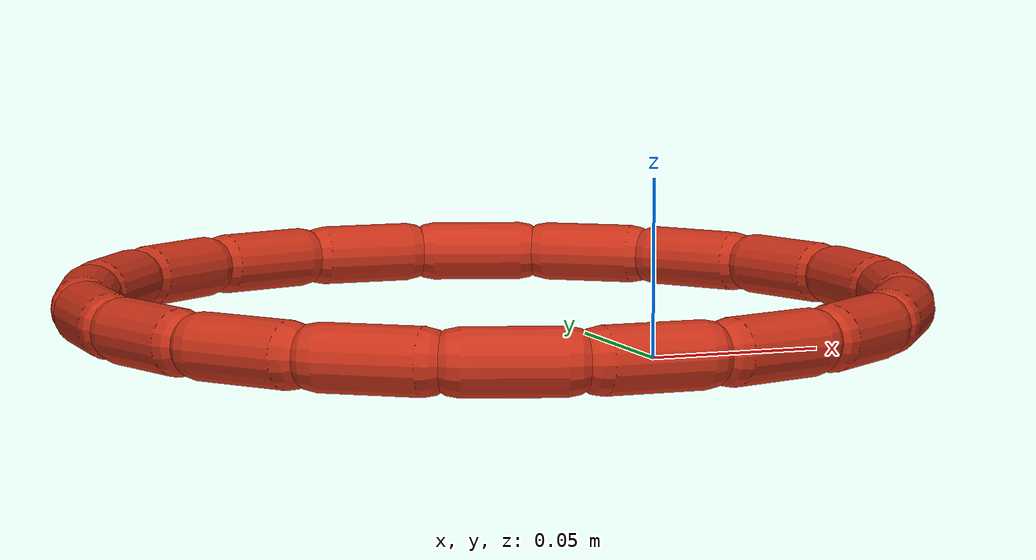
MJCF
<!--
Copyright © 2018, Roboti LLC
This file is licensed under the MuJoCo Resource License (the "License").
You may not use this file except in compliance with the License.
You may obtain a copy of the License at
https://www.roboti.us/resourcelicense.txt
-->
<mujoco model="Rope">

    <compiler angle="radian" />
    <option jacobian="dense" />
    <size njmax="300" nconmax="100" nstack="50000" />

    <worldbody>
        <body name="B0" pos="0 0 0">
            <inertial pos="0 0 0" quat="0.707107 0 0.707107 0" mass="0.0125664" diaginertia="1.98968e-06 1.98968e-06 6.28319e-07" />
            <joint type="free" />
            <geom name="G0" size="0.01 0.015" quat="0.707107 0 0.707107 0" type="capsule" rgba="0.8 0.2 0.1 1" />
            <body name="B1" pos="0.0390211 0.00618034 0" quat="0.987688 0 0 0.156434">
                <inertial pos="0 0 0" quat="0.707107 0 0.707107 0" mass="0.0125664" diaginertia="1.98968e-06 1.98968e-06 6.28319e-07" />
                <joint name="J0_1" pos="-0.02 0 0" axis="0 1 0"   damping="0.005" stiffness="0.001" />
                <joint name="J1_1" pos="-0.02 0 0" axis="0 0 1"   damping="0.005" stiffness="0.001" />
                <geom name="G1" size="0.01 0.015" quat="0.707107 0 0.707107 0" type="capsule" rgba="0.8 0.2 0.1 1" />
                <body name="B2" pos="0.0390211 0.00618034 0" quat="0.987688 0 0 0.156434">
                    <inertial pos="0 0 0" quat="0.707107 0 0.707107 0" mass="0.0125664" diaginertia="1.98968e-06 1.98968e-06 6.28319e-07" />
                    <joint name="J0_2" pos="-0.02 0 0" axis="0 1 0"   damping="0.005" stiffness="0.001" />
                    <joint name="J1_2" pos="-0.02 0 0" axis="0 0 1"   damping="0.005" stiffness="0.001" />
                    <geom name="G2" size="0.01 0.015" quat="0.707107 0 0.707107 0" type="capsule" rgba="0.8 0.2 0.1 1" />
                    <body name="B3" pos="0.0390211 0.00618034 0" quat="0.987688 0 0 0.156434">
                        <inertial pos="0 0 0" quat="0.707107 0 0.707107 0" mass="0.0125664" diaginertia="1.98968e-06 1.98968e-06 6.28319e-07" />
                        <joint name="J0_3" pos="-0.02 0 0" axis="0 1 0"   damping="0.005" stiffness="0.001" />
                        <joint name="J1_3" pos="-0.02 0 0" axis="0 0 1"   damping="0.005" stiffness="0.001" />
                        <geom name="G3" size="0.01 0.015" quat="0.707107 0 0.707107 0" type="capsule" rgba="0.8 0.2 0.1 1" />
                        <body name="B4" pos="0.0390211 0.00618034 0" quat="0.987688 0 0 0.156434">
                            <inertial pos="0 0 0" quat="0.707107 0 0.707107 0" mass="0.0125664" diaginertia="1.98968e-06 1.98968e-06 6.28319e-07" />
                            <joint name="J0_4" pos="-0.02 0 0" axis="0 1 0"   damping="0.005" stiffness="0.001" />
                            <joint name="J1_4" pos="-0.02 0 0" axis="0 0 1"   damping="0.005" stiffness="0.001" />
                            <geom name="G4" size="0.01 0.015" quat="0.707107 0 0.707107 0" type="capsule" rgba="0.8 0.2 0.1 1" />
                            <body name="B5" pos="0.0390211 0.00618034 0" quat="0.987688 0 0 0.156434">
                                <inertial pos="0 0 0" quat="0.707107 0 0.707107 0" mass="0.0125664" diaginertia="1.98968e-06 1.98968e-06 6.28319e-07" />
                                <joint name="J0_5" pos="-0.02 0 0" axis="0 1 0"   damping="0.005" stiffness="0.001" />
                                <joint name="J1_5" pos="-0.02 0 0" axis="0 0 1"   damping="0.005" stiffness="0.001" />
                                <geom name="G5" size="0.01 0.015" quat="0.707107 0 0.707107 0" type="capsule" rgba="0.8 0.2 0.1 1" />
                                <body name="B6" pos="0.0390211 0.00618034 0" quat="0.987688 0 0 0.156434">
                                    <inertial pos="0 0 0" quat="0.707107 0 0.707107 0" mass="0.0125664" diaginertia="1.98968e-06 1.98968e-06 6.28319e-07" />
                                    <joint name="J0_6" pos="-0.02 0 0" axis="0 1 0"   damping="0.005" stiffness="0.001" />
                                    <joint name="J1_6" pos="-0.02 0 0" axis="0 0 1"   damping="0.005" stiffness="0.001" />
                                    <geom name="G6" size="0.01 0.015" quat="0.707107 0 0.707107 0" type="capsule" rgba="0.8 0.2 0.1 1" />
                                    <body name="B7" pos="0.0390211 0.00618034 0" quat="0.987688 0 0 0.156434">
                                        <inertial pos="0 0 0" quat="0.707107 0 0.707107 0" mass="0.0125664" diaginertia="1.98968e-06 1.98968e-06 6.28319e-07" />
                                        <joint name="J0_7" pos="-0.02 0 0" axis="0 1 0"   damping="0.005" stiffness="0.001" />
                                        <joint name="J1_7" pos="-0.02 0 0" axis="0 0 1"   damping="0.005" stiffness="0.001" />
                                        <geom name="G7" size="0.01 0.015" quat="0.707107 0 0.707107 0" type="capsule" rgba="0.8 0.2 0.1 1" />
                                        <body name="B8" pos="0.0390211 0.00618034 0" quat="0.987688 0 0 0.156434">
                                            <inertial pos="0 0 0" quat="0.707107 0 0.707107 0" mass="0.0125664" diaginertia="1.98968e-06 1.98968e-06 6.28319e-07" />
                                            <joint name="J0_8" pos="-0.02 0 0" axis="0 1 0"   damping="0.005" stiffness="0.001" />
                                            <joint name="J1_8" pos="-0.02 0 0" axis="0 0 1"   damping="0.005" stiffness="0.001" />
                                            <geom name="G8" size="0.01 0.015" quat="0.707107 0 0.707107 0" type="capsule" rgba="0.8 0.2 0.1 1" />
                                            <body name="B9" pos="0.0390211 0.00618034 0" quat="0.987688 0 0 0.156434">
                                                <inertial pos="0 0 0" quat="0.707107 0 0.707107 0" mass="0.0125664" diaginertia="1.98968e-06 1.98968e-06 6.28319e-07" />
                                                <joint name="J0_9" pos="-0.02 0 0" axis="0 1 0"   damping="0.005" stiffness="0.001" />
                                                <joint name="J1_9" pos="-0.02 0 0" axis="0 0 1"   damping="0.005" stiffness="0.001" />
                                                <geom name="G9" size="0.01 0.015" quat="0.707107 0 0.707107 0" type="capsule" rgba="0.8 0.2 0.1 1" />
                                                <body name="B10" pos="0.0390211 0.00618034 0" quat="0.987688 0 0 0.156434">
                                                    <inertial pos="0 0 0" quat="0.707107 0 0.707107 0" mass="0.0125664" diaginertia="1.98968e-06 1.98968e-06 6.28319e-07" />
                                                    <joint name="J0_10" pos="-0.02 0 0" axis="0 1 0"   damping="0.005" stiffness="0.001" />
                                                    <joint name="J1_10" pos="-0.02 0 0" axis="0 0 1"   damping="0.005" stiffness="0.001" />
                                                    <geom name="G10" size="0.01 0.015" quat="0.707107 0 0.707107 0" type="capsule" rgba="0.8 0.2 0.1 1" />
                                                    <body name="B11" pos="0.0390211 0.00618034 0" quat="0.987688 0 0 0.156434">
                                                        <inertial pos="0 0 0" quat="0.707107 0 0.707107 0" mass="0.0125664" diaginertia="1.98968e-06 1.98968e-06 6.28319e-07" />
                                                        <joint name="J0_11" pos="-0.02 0 0" axis="0 1 0"   damping="0.005" stiffness="0.001" />
                                                        <joint name="J1_11" pos="-0.02 0 0" axis="0 0 1"   damping="0.005" stiffness="0.001" />
                                                        <geom name="G11" size="0.01 0.015" quat="0.707107 0 0.707107 0" type="capsule" rgba="0.8 0.2 0.1 1" />
                                                        <body name="B12" pos="0.0390211 0.00618034 0" quat="0.987688 0 0 0.156434">
                                                            <inertial pos="0 0 0" quat="0.707107 0 0.707107 0" mass="0.0125664" diaginertia="1.98968e-06 1.98968e-06 6.28319e-07" />
                                                            <joint name="J0_12" pos="-0.02 0 0" axis="0 1 0"   damping="0.005" stiffness="0.001" />
                                                            <joint name="J1_12" pos="-0.02 0 0" axis="0 0 1"   damping="0.005" stiffness="0.001" />
                                                            <geom name="G12" size="0.01 0.015" quat="0.707107 0 0.707107 0" type="capsule" rgba="0.8 0.2 0.1 1" />
                                                            <body name="B13" pos="0.0390211 0.00618034 0" quat="0.987688 0 0 0.156434">
                                                                <inertial pos="0 0 0" quat="0.707107 0 0.707107 0" mass="0.0125664" diaginertia="1.98968e-06 1.98968e-06 6.28319e-07" />
                                                                <joint name="J0_13" pos="-0.02 0 0" axis="0 1 0"   damping="0.005" stiffness="0.001" />
                                                                <joint name="J1_13" pos="-0.02 0 0" axis="0 0 1"   damping="0.005" stiffness="0.001" />
                                                                <geom name="G13" size="0.01 0.015" quat="0.707107 0 0.707107 0" type="capsule" rgba="0.8 0.2 0.1 1" />
                                                                <body name="B14" pos="0.0390211 0.00618034 0" quat="0.987688 0 0 0.156434">
                                                                    <inertial pos="0 0 0" quat="0.707107 0 0.707107 0" mass="0.0125664" diaginertia="1.98968e-06 1.98968e-06 6.28319e-07" />
                                                                    <joint name="J0_14" pos="-0.02 0 0" axis="0 1 0"   damping="0.005" stiffness="0.001" />
                                                                    <joint name="J1_14" pos="-0.02 0 0" axis="0 0 1"   damping="0.005" stiffness="0.001" />
                                                                    <geom name="G14" size="0.01 0.015" quat="0.707107 0 0.707107 0" type="capsule" rgba="0.8 0.2 0.1 1" />
                                                                    <body name="B15" pos="0.0390211 0.00618034 0" quat="0.987688 0 0 0.156434">
                                                                        <inertial pos="0 0 0" quat="0.707107 0 0.707107 0" mass="0.0125664" diaginertia="1.98968e-06 1.98968e-06 6.28319e-07" />
                                                                        <joint name="J0_15" pos="-0.02 0 0" axis="0 1 0"   damping="0.005" stiffness="0.001" />
                                                                        <joint name="J1_15" pos="-0.02 0 0" axis="0 0 1"   damping="0.005" stiffness="0.001" />
                                                                        <geom name="G15" size="0.01 0.015" quat="0.707107 0 0.707107 0" type="capsule" rgba="0.8 0.2 0.1 1" />
                                                                        <body name="B16" pos="0.0390211 0.00618034 0" quat="0.987688 0 0 0.156434">
                                                                            <inertial pos="0 0 0" quat="0.707107 0 0.707107 0" mass="0.0125664" diaginertia="1.98968e-06 1.98968e-06 6.28319e-07" />
                                                                            <joint name="J0_16" pos="-0.02 0 0" axis="0 1 0"   damping="0.005" stiffness="0.001" />
                                                                            <joint name="J1_16" pos="-0.02 0 0" axis="0 0 1"   damping="0.005" stiffness="0.001" />
                                                                            <geom name="G16" size="0.01 0.015" quat="0.707107 0 0.707107 0" type="capsule" rgba="0.8 0.2 0.1 1" />
                                                                            <body name="B17" pos="0.0390211 0.00618034 0" quat="0.987688 0 0 0.156434">
                                                                                <inertial pos="0 0 0" quat="0.707107 0 0.707107 0" mass="0.0125664" diaginertia="1.98968e-06 1.98968e-06 6.28319e-07" />
                                                                                <joint name="J0_17" pos="-0.02 0 0" axis="0 1 0"   damping="0.005" stiffness="0.001" />
                                                                                <joint name="J1_17" pos="-0.02 0 0" axis="0 0 1"   damping="0.005" stiffness="0.001" />
                                                                                <geom name="G17" size="0.01 0.015" quat="0.707107 0 0.707107 0" type="capsule" rgba="0.8 0.2 0.1 1" />
                                                                                <body name="B18" pos="0.0390211 0.00618034 0" quat="0.987688 0 0 0.156434">
                                                                                    <inertial pos="0 0 0" quat="0.707107 0 0.707107 0" mass="0.0125664" diaginertia="1.98968e-06 1.98968e-06 6.28319e-07" />
                                                                                    <joint name="J0_18" pos="-0.02 0 0" axis="0 1 0"   damping="0.005" stiffness="0.001" />
                                                                                    <joint name="J1_18" pos="-0.02 0 0" axis="0 0 1"   damping="0.005" stiffness="0.001" />
                                                                                    <geom name="G18" size="0.01 0.015" quat="0.707107 0 0.707107 0" type="capsule" rgba="0.8 0.2 0.1 1" />
                                                                                    <body name="B19" pos="0.0390211 0.00618034 0" quat="0.987688 0 0 0.156434">
                                                                                        <inertial pos="0 0 0" quat="0.707107 0 0.707107 0" mass="0.0125664" diaginertia="1.98968e-06 1.98968e-06 6.28319e-07" />
                                                                                        <joint name="J0_19" pos="-0.02 0 0" axis="0 1 0"   damping="0.005" stiffness="0.001" />
                                                                                        <joint name="J1_19" pos="-0.02 0 0" axis="0 0 1"   damping="0.005" stiffness="0.001" />
                                                                                        <geom name="G19" size="0.01 0.015" quat="0.707107 0 0.707107 0" type="capsule" rgba="0.8 0.2 0.1 1" />
                                                                                    </body>
                                                                                </body>
                                                                            </body>
                                                                        </body>
                                                                    </body>
                                                                </body>
                                                            </body>
                                                        </body>
                                                    </body>
                                                </body>
                                            </body>
                                        </body>
                                    </body>
                                </body>
                            </body>
                        </body>
                    </body>
                </body>
            </body>
        </body>
		<body name="visual">

      </body>
    </worldbody>

    <contact>
        <exclude body1="B0" body2="B19" />
    </contact>
    <equality>
        <connect body1="B0" body2="B19" anchor="-0.02 0 0" solref="0.01 1"  />
    </equality>
</mujoco>
